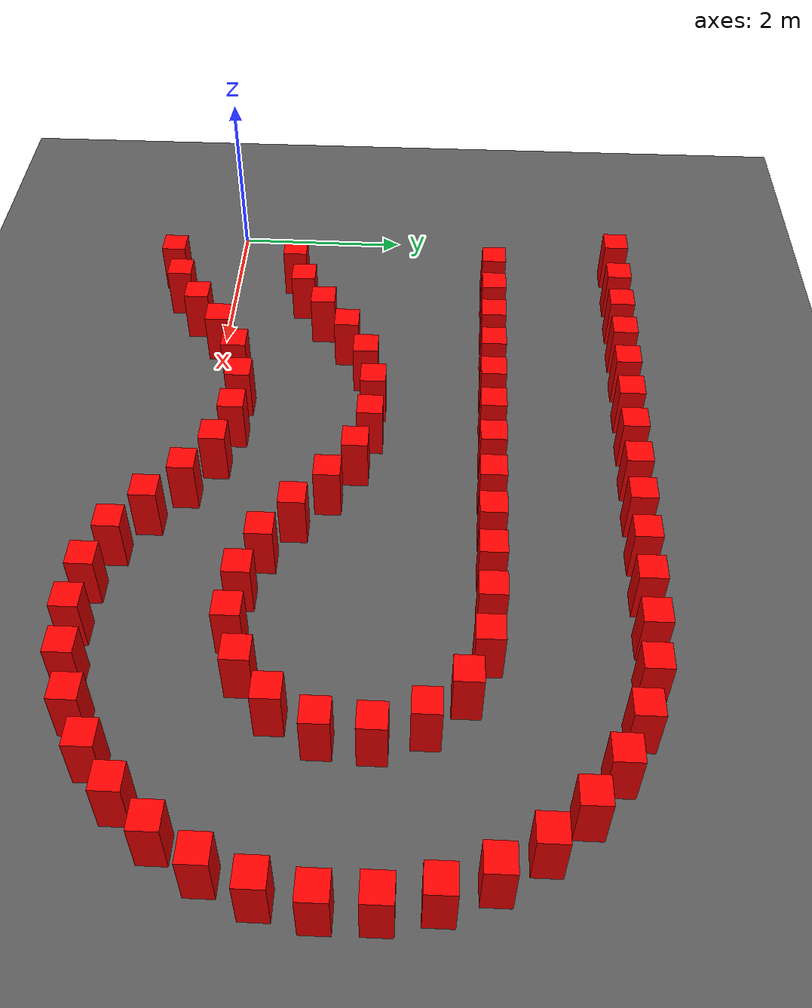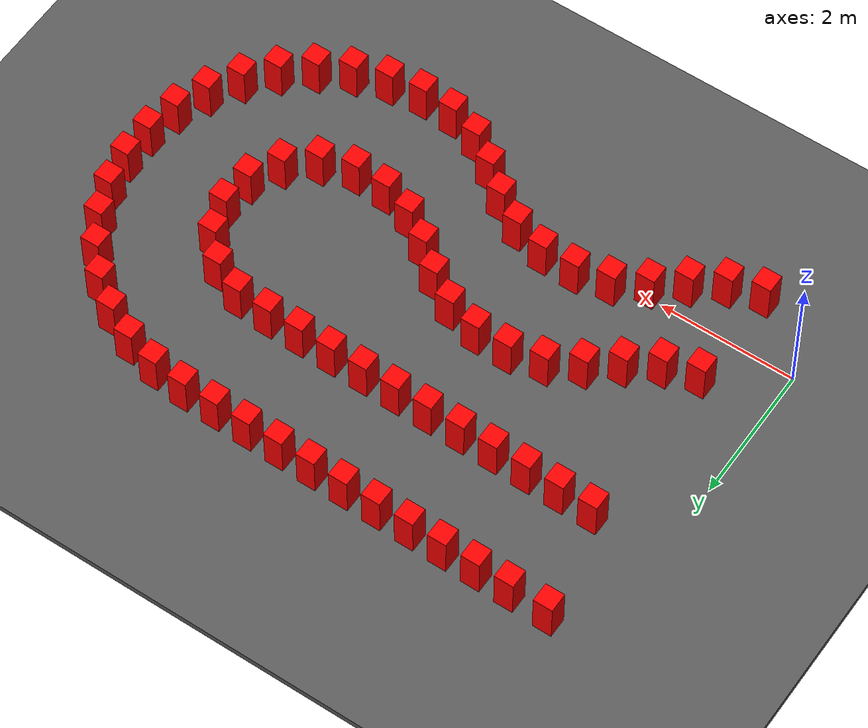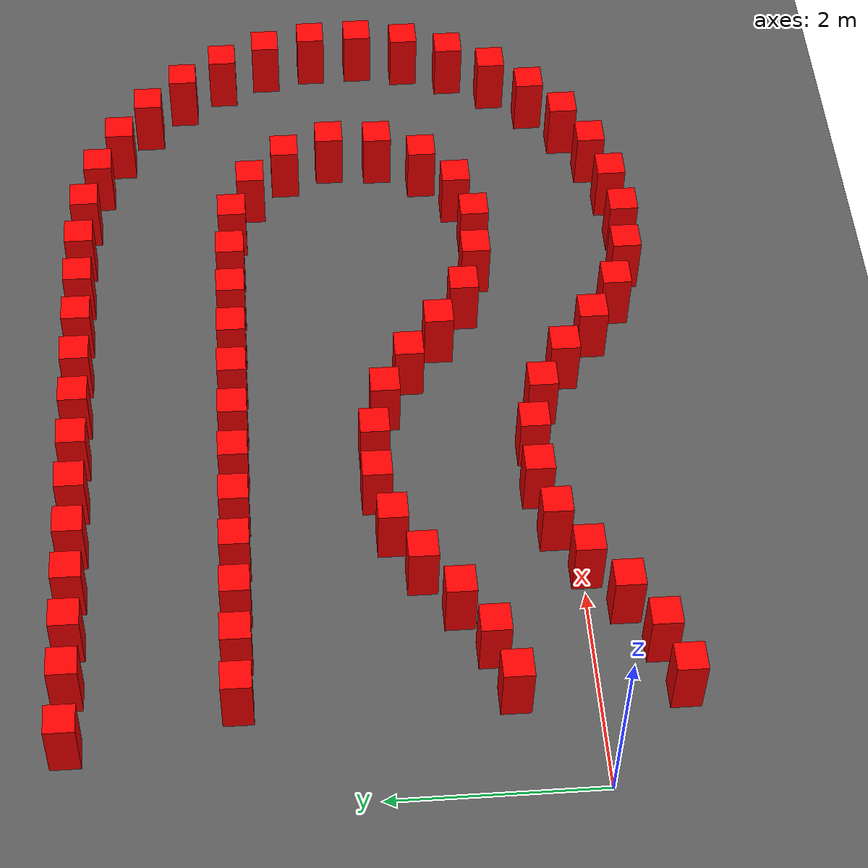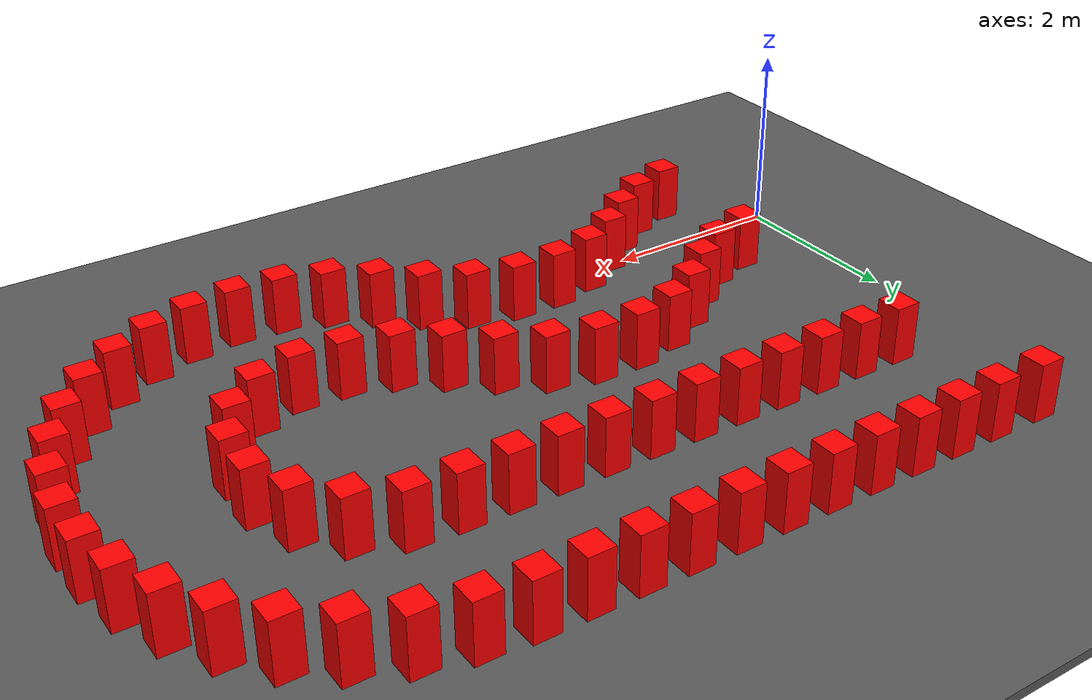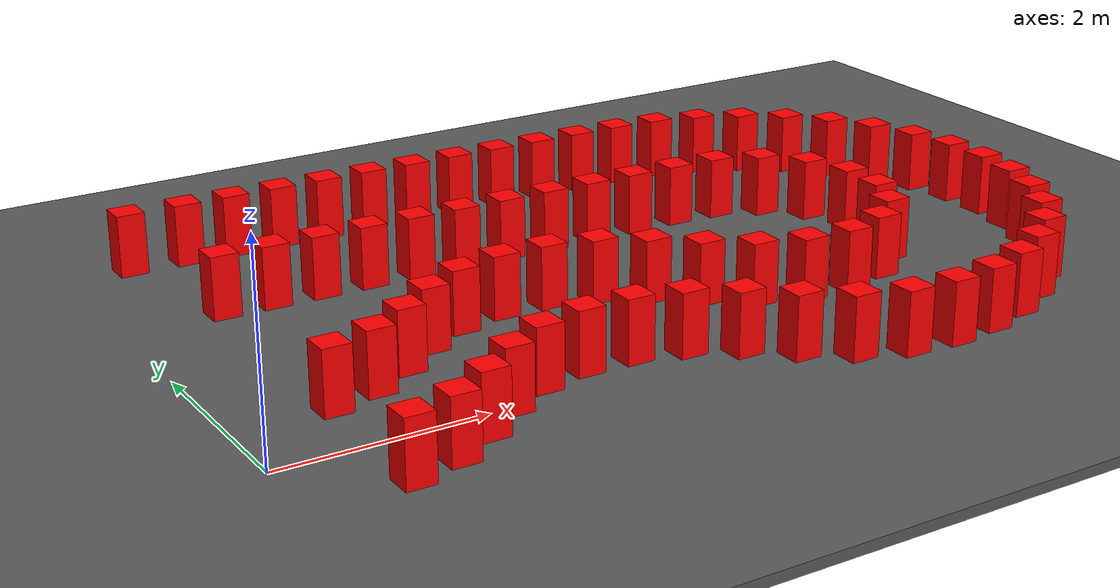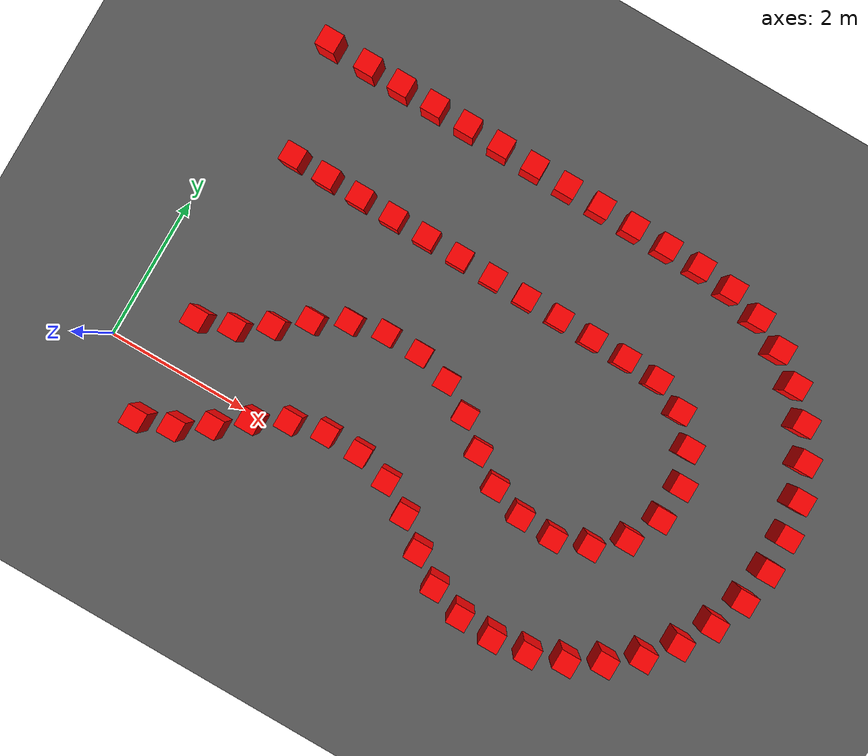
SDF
<sdf version="1.6">
 <world name="prototype">
  <model name="ground">
   <static>true</static>
   <pose>0 0 -0.05 0 0 0</pose>
   <link name="body">
    <visual name="visual">
     <geometry><box><size>200 200 0.1</size></box></geometry>
     <material><ambient>.35 .35 .35 1</ambient><diffuse>.35 .35 .35 1</diffuse></material>
    </visual>
    <collision name="collision"><geometry><box><size>200 200 0.1</size></box></geometry></collision>
   </link>
  </model>
  <model name="cone_proxy_c12">
   <static>true</static>
   <pose>0.9037 -0.7413 0.315 0 0 0</pose>
   <link name="body">
    <visual name="visual">
     <geometry><box><size>.28 .28 .63</size></box></geometry>
     <material><ambient>1 0 0 1</ambient><diffuse>1 0 0 1</diffuse></material>
    </visual>
    <collision name="collision"><geometry><box><size>.28 .28 .63</size></box></geometry></collision>
   </link>
  </model>
  <model name="cone_proxy_c13">
   <static>true</static>
   <pose>1.3822 -0.5943 0.315 0 0 0</pose>
   <link name="body">
    <visual name="visual">
     <geometry><box><size>.28 .28 .63</size></box></geometry>
     <material><ambient>1 0 0 1</ambient><diffuse>1 0 0 1</diffuse></material>
    </visual>
    <collision name="collision"><geometry><box><size>.28 .28 .63</size></box></geometry></collision>
   </link>
  </model>
  <model name="cone_proxy_c14">
   <static>true</static>
   <pose>1.8056 -0.3253 0.315 0 0 0</pose>
   <link name="body">
    <visual name="visual">
     <geometry><box><size>.28 .28 .63</size></box></geometry>
     <material><ambient>1 0 0 1</ambient><diffuse>1 0 0 1</diffuse></material>
    </visual>
    <collision name="collision"><geometry><box><size>.28 .28 .63</size></box></geometry></collision>
   </link>
  </model>
  <model name="cone_proxy_c15">
   <static>true</static>
   <pose>2.2037 -0.0190 0.315 0 0 0</pose>
   <link name="body">
    <visual name="visual">
     <geometry><box><size>.28 .28 .63</size></box></geometry>
     <material><ambient>1 0 0 1</ambient><diffuse>1 0 0 1</diffuse></material>
    </visual>
    <collision name="collision"><geometry><box><size>.28 .28 .63</size></box></geometry></collision>
   </link>
  </model>
  <model name="cone_proxy_c16">
   <static>true</static>
   <pose>2.6419 0.2243 0.315 0 0 0</pose>
   <link name="body">
    <visual name="visual">
     <geometry><box><size>.28 .28 .63</size></box></geometry>
     <material><ambient>1 0 0 1</ambient><diffuse>1 0 0 1</diffuse></material>
    </visual>
    <collision name="collision"><geometry><box><size>.28 .28 .63</size></box></geometry></collision>
   </link>
  </model>
  <model name="cone_proxy_c17">
   <static>true</static>
   <pose>3.1303 0.3345 0.315 0 0 0</pose>
   <link name="body">
    <visual name="visual">
     <geometry><box><size>.28 .28 .63</size></box></geometry>
     <material><ambient>1 0 0 1</ambient><diffuse>1 0 0 1</diffuse></material>
    </visual>
    <collision name="collision"><geometry><box><size>.28 .28 .63</size></box></geometry></collision>
   </link>
  </model>
  <model name="cone_proxy_c18">
   <static>true</static>
   <pose>3.6316 0.3242 0.315 0 0 0</pose>
   <link name="body">
    <visual name="visual">
     <geometry><box><size>.28 .28 .63</size></box></geometry>
     <material><ambient>1 0 0 1</ambient><diffuse>1 0 0 1</diffuse></material>
    </visual>
    <collision name="collision"><geometry><box><size>.28 .28 .63</size></box></geometry></collision>
   </link>
  </model>
  <model name="cone_proxy_c19">
   <static>true</static>
   <pose>4.1146 0.1928 0.315 0 0 0</pose>
   <link name="body">
    <visual name="visual">
     <geometry><box><size>.28 .28 .63</size></box></geometry>
     <material><ambient>1 0 0 1</ambient><diffuse>1 0 0 1</diffuse></material>
    </visual>
    <collision name="collision"><geometry><box><size>.28 .28 .63</size></box></geometry></collision>
   </link>
  </model>
  <model name="cone_proxy_c20">
   <static>true</static>
   <pose>4.5422 -0.0684 0.315 0 0 0</pose>
   <link name="body">
    <visual name="visual">
     <geometry><box><size>.28 .28 .63</size></box></geometry>
     <material><ambient>1 0 0 1</ambient><diffuse>1 0 0 1</diffuse></material>
    </visual>
    <collision name="collision"><geometry><box><size>.28 .28 .63</size></box></geometry></collision>
   </link>
  </model>
  <model name="cone_proxy_c21">
   <static>true</static>
   <pose>4.9290 -0.3891 0.315 0 0 0</pose>
   <link name="body">
    <visual name="visual">
     <geometry><box><size>.28 .28 .63</size></box></geometry>
     <material><ambient>1 0 0 1</ambient><diffuse>1 0 0 1</diffuse></material>
    </visual>
    <collision name="collision"><geometry><box><size>.28 .28 .63</size></box></geometry></collision>
   </link>
  </model>
  <model name="cone_proxy_c22">
   <static>true</static>
   <pose>5.3436 -0.6713 0.315 0 0 0</pose>
   <link name="body">
    <visual name="visual">
     <geometry><box><size>.28 .28 .63</size></box></geometry>
     <material><ambient>1 0 0 1</ambient><diffuse>1 0 0 1</diffuse></material>
    </visual>
    <collision name="collision"><geometry><box><size>.28 .28 .63</size></box></geometry></collision>
   </link>
  </model>
  <model name="cone_proxy_c23">
   <static>true</static>
   <pose>5.8178 -0.8321 0.315 0 0 0</pose>
   <link name="body">
    <visual name="visual">
     <geometry><box><size>.28 .28 .63</size></box></geometry>
     <material><ambient>1 0 0 1</ambient><diffuse>1 0 0 1</diffuse></material>
    </visual>
    <collision name="collision"><geometry><box><size>.28 .28 .63</size></box></geometry></collision>
   </link>
  </model>
  <model name="cone_proxy_c24">
   <static>true</static>
   <pose>6.3180 -0.8662 0.315 0 0 0</pose>
   <link name="body">
    <visual name="visual">
     <geometry><box><size>.28 .28 .63</size></box></geometry>
     <material><ambient>1 0 0 1</ambient><diffuse>1 0 0 1</diffuse></material>
    </visual>
    <collision name="collision"><geometry><box><size>.28 .28 .63</size></box></geometry></collision>
   </link>
  </model>
  <model name="cone_proxy_c25">
   <static>true</static>
   <pose>6.8156 -0.8043 0.315 0 0 0</pose>
   <link name="body">
    <visual name="visual">
     <geometry><box><size>.28 .28 .63</size></box></geometry>
     <material><ambient>1 0 0 1</ambient><diffuse>1 0 0 1</diffuse></material>
    </visual>
    <collision name="collision"><geometry><box><size>.28 .28 .63</size></box></geometry></collision>
   </link>
  </model>
  <model name="cone_proxy_c26">
   <static>true</static>
   <pose>7.2944 -0.6541 0.315 0 0 0</pose>
   <link name="body">
    <visual name="visual">
     <geometry><box><size>.28 .28 .63</size></box></geometry>
     <material><ambient>1 0 0 1</ambient><diffuse>1 0 0 1</diffuse></material>
    </visual>
    <collision name="collision"><geometry><box><size>.28 .28 .63</size></box></geometry></collision>
   </link>
  </model>
  <model name="cone_proxy_c27">
   <static>true</static>
   <pose>7.7366 -0.4170 0.315 0 0 0</pose>
   <link name="body">
    <visual name="visual">
     <geometry><box><size>.28 .28 .63</size></box></geometry>
     <material><ambient>1 0 0 1</ambient><diffuse>1 0 0 1</diffuse></material>
    </visual>
    <collision name="collision"><geometry><box><size>.28 .28 .63</size></box></geometry></collision>
   </link>
  </model>
  <model name="cone_proxy_c28">
   <static>true</static>
   <pose>8.1295 -0.1051 0.315 0 0 0</pose>
   <link name="body">
    <visual name="visual">
     <geometry><box><size>.28 .28 .63</size></box></geometry>
     <material><ambient>1 0 0 1</ambient><diffuse>1 0 0 1</diffuse></material>
    </visual>
    <collision name="collision"><geometry><box><size>.28 .28 .63</size></box></geometry></collision>
   </link>
  </model>
  <model name="cone_proxy_c29">
   <static>true</static>
   <pose>8.4586 0.2735 0.315 0 0 0</pose>
   <link name="body">
    <visual name="visual">
     <geometry><box><size>.28 .28 .63</size></box></geometry>
     <material><ambient>1 0 0 1</ambient><diffuse>1 0 0 1</diffuse></material>
    </visual>
    <collision name="collision"><geometry><box><size>.28 .28 .63</size></box></geometry></collision>
   </link>
  </model>
  <model name="cone_proxy_c30">
   <static>true</static>
   <pose>8.7129 0.7059 0.315 0 0 0</pose>
   <link name="body">
    <visual name="visual">
     <geometry><box><size>.28 .28 .63</size></box></geometry>
     <material><ambient>1 0 0 1</ambient><diffuse>1 0 0 1</diffuse></material>
    </visual>
    <collision name="collision"><geometry><box><size>.28 .28 .63</size></box></geometry></collision>
   </link>
  </model>
  <model name="cone_proxy_c31">
   <static>true</static>
   <pose>8.8861 1.1767 0.315 0 0 0</pose>
   <link name="body">
    <visual name="visual">
     <geometry><box><size>.28 .28 .63</size></box></geometry>
     <material><ambient>1 0 0 1</ambient><diffuse>1 0 0 1</diffuse></material>
    </visual>
    <collision name="collision"><geometry><box><size>.28 .28 .63</size></box></geometry></collision>
   </link>
  </model>
  <model name="cone_proxy_c32">
   <static>true</static>
   <pose>8.9684 1.6717 0.315 0 0 0</pose>
   <link name="body">
    <visual name="visual">
     <geometry><box><size>.28 .28 .63</size></box></geometry>
     <material><ambient>1 0 0 1</ambient><diffuse>1 0 0 1</diffuse></material>
    </visual>
    <collision name="collision"><geometry><box><size>.28 .28 .63</size></box></geometry></collision>
   </link>
  </model>
  <model name="cone_proxy_c33">
   <static>true</static>
   <pose>8.9604 2.1733 0.315 0 0 0</pose>
   <link name="body">
    <visual name="visual">
     <geometry><box><size>.28 .28 .63</size></box></geometry>
     <material><ambient>1 0 0 1</ambient><diffuse>1 0 0 1</diffuse></material>
    </visual>
    <collision name="collision"><geometry><box><size>.28 .28 .63</size></box></geometry></collision>
   </link>
  </model>
  <model name="cone_proxy_c34">
   <static>true</static>
   <pose>8.8622 2.6653 0.315 0 0 0</pose>
   <link name="body">
    <visual name="visual">
     <geometry><box><size>.28 .28 .63</size></box></geometry>
     <material><ambient>1 0 0 1</ambient><diffuse>1 0 0 1</diffuse></material>
    </visual>
    <collision name="collision"><geometry><box><size>.28 .28 .63</size></box></geometry></collision>
   </link>
  </model>
  <model name="cone_proxy_c35">
   <static>true</static>
   <pose>8.6743 3.1304 0.315 0 0 0</pose>
   <link name="body">
    <visual name="visual">
     <geometry><box><size>.28 .28 .63</size></box></geometry>
     <material><ambient>1 0 0 1</ambient><diffuse>1 0 0 1</diffuse></material>
    </visual>
    <collision name="collision"><geometry><box><size>.28 .28 .63</size></box></geometry></collision>
   </link>
  </model>
  <model name="cone_proxy_c36">
   <static>true</static>
   <pose>8.4065 3.5546 0.315 0 0 0</pose>
   <link name="body">
    <visual name="visual">
     <geometry><box><size>.28 .28 .63</size></box></geometry>
     <material><ambient>1 0 0 1</ambient><diffuse>1 0 0 1</diffuse></material>
    </visual>
    <collision name="collision"><geometry><box><size>.28 .28 .63</size></box></geometry></collision>
   </link>
  </model>
  <model name="cone_proxy_c37">
   <static>true</static>
   <pose>8.0652 3.9224 0.315 0 0 0</pose>
   <link name="body">
    <visual name="visual">
     <geometry><box><size>.28 .28 .63</size></box></geometry>
     <material><ambient>1 0 0 1</ambient><diffuse>1 0 0 1</diffuse></material>
    </visual>
    <collision name="collision"><geometry><box><size>.28 .28 .63</size></box></geometry></collision>
   </link>
  </model>
  <model name="cone_proxy_c38">
   <static>true</static>
   <pose>7.6627 4.2218 0.315 0 0 0</pose>
   <link name="body">
    <visual name="visual">
     <geometry><box><size>.28 .28 .63</size></box></geometry>
     <material><ambient>1 0 0 1</ambient><diffuse>1 0 0 1</diffuse></material>
    </visual>
    <collision name="collision"><geometry><box><size>.28 .28 .63</size></box></geometry></collision>
   </link>
  </model>
  <model name="cone_proxy_c39">
   <static>true</static>
   <pose>7.2133 4.4447 0.315 0 0 0</pose>
   <link name="body">
    <visual name="visual">
     <geometry><box><size>.28 .28 .63</size></box></geometry>
     <material><ambient>1 0 0 1</ambient><diffuse>1 0 0 1</diffuse></material>
    </visual>
    <collision name="collision"><geometry><box><size>.28 .28 .63</size></box></geometry></collision>
   </link>
  </model>
  <model name="cone_proxy_c40">
   <static>true</static>
   <pose>6.7300 4.5794 0.315 0 0 0</pose>
   <link name="body">
    <visual name="visual">
     <geometry><box><size>.28 .28 .63</size></box></geometry>
     <material><ambient>1 0 0 1</ambient><diffuse>1 0 0 1</diffuse></material>
    </visual>
    <collision name="collision"><geometry><box><size>.28 .28 .63</size></box></geometry></collision>
   </link>
  </model>
  <model name="cone_proxy_c41">
   <static>true</static>
   <pose>6.2305 4.6273 0.315 0 0 0</pose>
   <link name="body">
    <visual name="visual">
     <geometry><box><size>.28 .28 .63</size></box></geometry>
     <material><ambient>1 0 0 1</ambient><diffuse>1 0 0 1</diffuse></material>
    </visual>
    <collision name="collision"><geometry><box><size>.28 .28 .63</size></box></geometry></collision>
   </link>
  </model>
  <model name="cone_proxy_c42">
   <static>true</static>
   <pose>5.7281 4.6364 0.315 0 0 0</pose>
   <link name="body">
    <visual name="visual">
     <geometry><box><size>.28 .28 .63</size></box></geometry>
     <material><ambient>1 0 0 1</ambient><diffuse>1 0 0 1</diffuse></material>
    </visual>
    <collision name="collision"><geometry><box><size>.28 .28 .63</size></box></geometry></collision>
   </link>
  </model>
  <model name="cone_proxy_c43">
   <static>true</static>
   <pose>5.2257 4.6455 0.315 0 0 0</pose>
   <link name="body">
    <visual name="visual">
     <geometry><box><size>.28 .28 .63</size></box></geometry>
     <material><ambient>1 0 0 1</ambient><diffuse>1 0 0 1</diffuse></material>
    </visual>
    <collision name="collision"><geometry><box><size>.28 .28 .63</size></box></geometry></collision>
   </link>
  </model>
  <model name="cone_proxy_c44">
   <static>true</static>
   <pose>4.7234 4.6545 0.315 0 0 0</pose>
   <link name="body">
    <visual name="visual">
     <geometry><box><size>.28 .28 .63</size></box></geometry>
     <material><ambient>1 0 0 1</ambient><diffuse>1 0 0 1</diffuse></material>
    </visual>
    <collision name="collision"><geometry><box><size>.28 .28 .63</size></box></geometry></collision>
   </link>
  </model>
  <model name="cone_proxy_c45">
   <static>true</static>
   <pose>4.2209 4.6636 0.315 0 0 0</pose>
   <link name="body">
    <visual name="visual">
     <geometry><box><size>.28 .28 .63</size></box></geometry>
     <material><ambient>1 0 0 1</ambient><diffuse>1 0 0 1</diffuse></material>
    </visual>
    <collision name="collision"><geometry><box><size>.28 .28 .63</size></box></geometry></collision>
   </link>
  </model>
  <model name="cone_proxy_c46">
   <static>true</static>
   <pose>3.7185 4.6726 0.315 0 0 0</pose>
   <link name="body">
    <visual name="visual">
     <geometry><box><size>.28 .28 .63</size></box></geometry>
     <material><ambient>1 0 0 1</ambient><diffuse>1 0 0 1</diffuse></material>
    </visual>
    <collision name="collision"><geometry><box><size>.28 .28 .63</size></box></geometry></collision>
   </link>
  </model>
  <model name="cone_proxy_c47">
   <static>true</static>
   <pose>3.2161 4.6817 0.315 0 0 0</pose>
   <link name="body">
    <visual name="visual">
     <geometry><box><size>.28 .28 .63</size></box></geometry>
     <material><ambient>1 0 0 1</ambient><diffuse>1 0 0 1</diffuse></material>
    </visual>
    <collision name="collision"><geometry><box><size>.28 .28 .63</size></box></geometry></collision>
   </link>
  </model>
  <model name="cone_proxy_c48">
   <static>true</static>
   <pose>2.7137 4.6907 0.315 0 0 0</pose>
   <link name="body">
    <visual name="visual">
     <geometry><box><size>.28 .28 .63</size></box></geometry>
     <material><ambient>1 0 0 1</ambient><diffuse>1 0 0 1</diffuse></material>
    </visual>
    <collision name="collision"><geometry><box><size>.28 .28 .63</size></box></geometry></collision>
   </link>
  </model>
  <model name="cone_proxy_c49">
   <static>true</static>
   <pose>2.2114 4.6998 0.315 0 0 0</pose>
   <link name="body">
    <visual name="visual">
     <geometry><box><size>.28 .28 .63</size></box></geometry>
     <material><ambient>1 0 0 1</ambient><diffuse>1 0 0 1</diffuse></material>
    </visual>
    <collision name="collision"><geometry><box><size>.28 .28 .63</size></box></geometry></collision>
   </link>
  </model>
  <model name="cone_proxy_c50">
   <static>true</static>
   <pose>1.7089 4.7088 0.315 0 0 0</pose>
   <link name="body">
    <visual name="visual">
     <geometry><box><size>.28 .28 .63</size></box></geometry>
     <material><ambient>1 0 0 1</ambient><diffuse>1 0 0 1</diffuse></material>
    </visual>
    <collision name="collision"><geometry><box><size>.28 .28 .63</size></box></geometry></collision>
   </link>
  </model>
  <model name="cone_proxy_c51">
   <static>true</static>
   <pose>1.2065 4.7179 0.315 0 0 0</pose>
   <link name="body">
    <visual name="visual">
     <geometry><box><size>.28 .28 .63</size></box></geometry>
     <material><ambient>1 0 0 1</ambient><diffuse>1 0 0 1</diffuse></material>
    </visual>
    <collision name="collision"><geometry><box><size>.28 .28 .63</size></box></geometry></collision>
   </link>
  </model>
  <model name="cone_proxy_c52">
   <static>true</static>
   <pose>0.6272 4.7283 0.315 0 0 0</pose>
   <link name="body">
    <visual name="visual">
     <geometry><box><size>.28 .28 .63</size></box></geometry>
     <material><ambient>1 0 0 1</ambient><diffuse>1 0 0 1</diffuse></material>
    </visual>
    <collision name="collision"><geometry><box><size>.28 .28 .63</size></box></geometry></collision>
   </link>
  </model>
  <model name="cone_proxy_c85">
   <static>true</static>
   <pose>0.9309 0.7659 0.315 0 0 0</pose>
   <link name="body">
    <visual name="visual">
     <geometry><box><size>.28 .28 .63</size></box></geometry>
     <material><ambient>1 0 0 1</ambient><diffuse>1 0 0 1</diffuse></material>
    </visual>
    <collision name="collision"><geometry><box><size>.28 .28 .63</size></box></geometry></collision>
   </link>
  </model>
  <model name="cone_proxy_c86">
   <static>true</static>
   <pose>1.4093 0.9129 0.315 0 0 0</pose>
   <link name="body">
    <visual name="visual">
     <geometry><box><size>.28 .28 .63</size></box></geometry>
     <material><ambient>1 0 0 1</ambient><diffuse>1 0 0 1</diffuse></material>
    </visual>
    <collision name="collision"><geometry><box><size>.28 .28 .63</size></box></geometry></collision>
   </link>
  </model>
  <model name="cone_proxy_c87">
   <static>true</static>
   <pose>1.8327 1.1819 0.315 0 0 0</pose>
   <link name="body">
    <visual name="visual">
     <geometry><box><size>.28 .28 .63</size></box></geometry>
     <material><ambient>1 0 0 1</ambient><diffuse>1 0 0 1</diffuse></material>
    </visual>
    <collision name="collision"><geometry><box><size>.28 .28 .63</size></box></geometry></collision>
   </link>
  </model>
  <model name="cone_proxy_c88">
   <static>true</static>
   <pose>2.2309 1.4882 0.315 0 0 0</pose>
   <link name="body">
    <visual name="visual">
     <geometry><box><size>.28 .28 .63</size></box></geometry>
     <material><ambient>1 0 0 1</ambient><diffuse>1 0 0 1</diffuse></material>
    </visual>
    <collision name="collision"><geometry><box><size>.28 .28 .63</size></box></geometry></collision>
   </link>
  </model>
  <model name="cone_proxy_c89">
   <static>true</static>
   <pose>2.6691 1.7315 0.315 0 0 0</pose>
   <link name="body">
    <visual name="visual">
     <geometry><box><size>.28 .28 .63</size></box></geometry>
     <material><ambient>1 0 0 1</ambient><diffuse>1 0 0 1</diffuse></material>
    </visual>
    <collision name="collision"><geometry><box><size>.28 .28 .63</size></box></geometry></collision>
   </link>
  </model>
  <model name="cone_proxy_c90">
   <static>true</static>
   <pose>3.1574 1.8418 0.315 0 0 0</pose>
   <link name="body">
    <visual name="visual">
     <geometry><box><size>.28 .28 .63</size></box></geometry>
     <material><ambient>1 0 0 1</ambient><diffuse>1 0 0 1</diffuse></material>
    </visual>
    <collision name="collision"><geometry><box><size>.28 .28 .63</size></box></geometry></collision>
   </link>
  </model>
  <model name="cone_proxy_c91">
   <static>true</static>
   <pose>3.6587 1.8314 0.315 0 0 0</pose>
   <link name="body">
    <visual name="visual">
     <geometry><box><size>.28 .28 .63</size></box></geometry>
     <material><ambient>1 0 0 1</ambient><diffuse>1 0 0 1</diffuse></material>
    </visual>
    <collision name="collision"><geometry><box><size>.28 .28 .63</size></box></geometry></collision>
   </link>
  </model>
  <model name="cone_proxy_c92">
   <static>true</static>
   <pose>4.1417 1.7000 0.315 0 0 0</pose>
   <link name="body">
    <visual name="visual">
     <geometry><box><size>.28 .28 .63</size></box></geometry>
     <material><ambient>1 0 0 1</ambient><diffuse>1 0 0 1</diffuse></material>
    </visual>
    <collision name="collision"><geometry><box><size>.28 .28 .63</size></box></geometry></collision>
   </link>
  </model>
  <model name="cone_proxy_c93">
   <static>true</static>
   <pose>4.5694 1.4389 0.315 0 0 0</pose>
   <link name="body">
    <visual name="visual">
     <geometry><box><size>.28 .28 .63</size></box></geometry>
     <material><ambient>1 0 0 1</ambient><diffuse>1 0 0 1</diffuse></material>
    </visual>
    <collision name="collision"><geometry><box><size>.28 .28 .63</size></box></geometry></collision>
   </link>
  </model>
  <model name="cone_proxy_c94">
   <static>true</static>
   <pose>4.9562 1.1180 0.315 0 0 0</pose>
   <link name="body">
    <visual name="visual">
     <geometry><box><size>.28 .28 .63</size></box></geometry>
     <material><ambient>1 0 0 1</ambient><diffuse>1 0 0 1</diffuse></material>
    </visual>
    <collision name="collision"><geometry><box><size>.28 .28 .63</size></box></geometry></collision>
   </link>
  </model>
  <model name="cone_proxy_c95">
   <static>true</static>
   <pose>5.3708 0.8358 0.315 0 0 0</pose>
   <link name="body">
    <visual name="visual">
     <geometry><box><size>.28 .28 .63</size></box></geometry>
     <material><ambient>1 0 0 1</ambient><diffuse>1 0 0 1</diffuse></material>
    </visual>
    <collision name="collision"><geometry><box><size>.28 .28 .63</size></box></geometry></collision>
   </link>
  </model>
  <model name="cone_proxy_c96">
   <static>true</static>
   <pose>5.8449 0.6752 0.315 0 0 0</pose>
   <link name="body">
    <visual name="visual">
     <geometry><box><size>.28 .28 .63</size></box></geometry>
     <material><ambient>1 0 0 1</ambient><diffuse>1 0 0 1</diffuse></material>
    </visual>
    <collision name="collision"><geometry><box><size>.28 .28 .63</size></box></geometry></collision>
   </link>
  </model>
  <model name="cone_proxy_c97">
   <static>true</static>
   <pose>6.3449 0.6445 0.315 0 0 0</pose>
   <link name="body">
    <visual name="visual">
     <geometry><box><size>.28 .28 .63</size></box></geometry>
     <material><ambient>1 0 0 1</ambient><diffuse>1 0 0 1</diffuse></material>
    </visual>
    <collision name="collision"><geometry><box><size>.28 .28 .63</size></box></geometry></collision>
   </link>
  </model>
  <model name="cone_proxy_c98">
   <static>true</static>
   <pose>6.8221 0.7899 0.315 0 0 0</pose>
   <link name="body">
    <visual name="visual">
     <geometry><box><size>.28 .28 .63</size></box></geometry>
     <material><ambient>1 0 0 1</ambient><diffuse>1 0 0 1</diffuse></material>
    </visual>
    <collision name="collision"><geometry><box><size>.28 .28 .63</size></box></geometry></collision>
   </link>
  </model>
  <model name="cone_proxy_c99">
   <static>true</static>
   <pose>7.2036 1.1113 0.315 0 0 0</pose>
   <link name="body">
    <visual name="visual">
     <geometry><box><size>.28 .28 .63</size></box></geometry>
     <material><ambient>1 0 0 1</ambient><diffuse>1 0 0 1</diffuse></material>
    </visual>
    <collision name="collision"><geometry><box><size>.28 .28 .63</size></box></geometry></collision>
   </link>
  </model>
  <model name="cone_proxy_c100">
   <static>true</static>
   <pose>7.4278 1.5573 0.315 0 0 0</pose>
   <link name="body">
    <visual name="visual">
     <geometry><box><size>.28 .28 .63</size></box></geometry>
     <material><ambient>1 0 0 1</ambient><diffuse>1 0 0 1</diffuse></material>
    </visual>
    <collision name="collision"><geometry><box><size>.28 .28 .63</size></box></geometry></collision>
   </link>
  </model>
  <model name="cone_proxy_c101">
   <static>true</static>
   <pose>7.4572 2.0554 0.315 0 0 0</pose>
   <link name="body">
    <visual name="visual">
     <geometry><box><size>.28 .28 .63</size></box></geometry>
     <material><ambient>1 0 0 1</ambient><diffuse>1 0 0 1</diffuse></material>
    </visual>
    <collision name="collision"><geometry><box><size>.28 .28 .63</size></box></geometry></collision>
   </link>
  </model>
  <model name="cone_proxy_c102">
   <static>true</static>
   <pose>7.2880 2.5249 0.315 0 0 0</pose>
   <link name="body">
    <visual name="visual">
     <geometry><box><size>.28 .28 .63</size></box></geometry>
     <material><ambient>1 0 0 1</ambient><diffuse>1 0 0 1</diffuse></material>
    </visual>
    <collision name="collision"><geometry><box><size>.28 .28 .63</size></box></geometry></collision>
   </link>
  </model>
  <model name="cone_proxy_c103">
   <static>true</static>
   <pose>6.9477 2.8896 0.315 0 0 0</pose>
   <link name="body">
    <visual name="visual">
     <geometry><box><size>.28 .28 .63</size></box></geometry>
     <material><ambient>1 0 0 1</ambient><diffuse>1 0 0 1</diffuse></material>
    </visual>
    <collision name="collision"><geometry><box><size>.28 .28 .63</size></box></geometry></collision>
   </link>
  </model>
  <model name="cone_proxy_c104">
   <static>true</static>
   <pose>6.4913 3.0910 0.315 0 0 0</pose>
   <link name="body">
    <visual name="visual">
     <geometry><box><size>.28 .28 .63</size></box></geometry>
     <material><ambient>1 0 0 1</ambient><diffuse>1 0 0 1</diffuse></material>
    </visual>
    <collision name="collision"><geometry><box><size>.28 .28 .63</size></box></geometry></collision>
   </link>
  </model>
  <model name="cone_proxy_c105">
   <static>true</static>
   <pose>5.9909 3.1239 0.315 0 0 0</pose>
   <link name="body">
    <visual name="visual">
     <geometry><box><size>.28 .28 .63</size></box></geometry>
     <material><ambient>1 0 0 1</ambient><diffuse>1 0 0 1</diffuse></material>
    </visual>
    <collision name="collision"><geometry><box><size>.28 .28 .63</size></box></geometry></collision>
   </link>
  </model>
  <model name="cone_proxy_c106">
   <static>true</static>
   <pose>5.4885 3.1330 0.315 0 0 0</pose>
   <link name="body">
    <visual name="visual">
     <geometry><box><size>.28 .28 .63</size></box></geometry>
     <material><ambient>1 0 0 1</ambient><diffuse>1 0 0 1</diffuse></material>
    </visual>
    <collision name="collision"><geometry><box><size>.28 .28 .63</size></box></geometry></collision>
   </link>
  </model>
  <model name="cone_proxy_c107">
   <static>true</static>
   <pose>4.9861 3.1420 0.315 0 0 0</pose>
   <link name="body">
    <visual name="visual">
     <geometry><box><size>.28 .28 .63</size></box></geometry>
     <material><ambient>1 0 0 1</ambient><diffuse>1 0 0 1</diffuse></material>
    </visual>
    <collision name="collision"><geometry><box><size>.28 .28 .63</size></box></geometry></collision>
   </link>
  </model>
  <model name="cone_proxy_c108">
   <static>true</static>
   <pose>4.4837 3.1511 0.315 0 0 0</pose>
   <link name="body">
    <visual name="visual">
     <geometry><box><size>.28 .28 .63</size></box></geometry>
     <material><ambient>1 0 0 1</ambient><diffuse>1 0 0 1</diffuse></material>
    </visual>
    <collision name="collision"><geometry><box><size>.28 .28 .63</size></box></geometry></collision>
   </link>
  </model>
  <model name="cone_proxy_c109">
   <static>true</static>
   <pose>3.9813 3.1601 0.315 0 0 0</pose>
   <link name="body">
    <visual name="visual">
     <geometry><box><size>.28 .28 .63</size></box></geometry>
     <material><ambient>1 0 0 1</ambient><diffuse>1 0 0 1</diffuse></material>
    </visual>
    <collision name="collision"><geometry><box><size>.28 .28 .63</size></box></geometry></collision>
   </link>
  </model>
  <model name="cone_proxy_c110">
   <static>true</static>
   <pose>3.4789 3.1692 0.315 0 0 0</pose>
   <link name="body">
    <visual name="visual">
     <geometry><box><size>.28 .28 .63</size></box></geometry>
     <material><ambient>1 0 0 1</ambient><diffuse>1 0 0 1</diffuse></material>
    </visual>
    <collision name="collision"><geometry><box><size>.28 .28 .63</size></box></geometry></collision>
   </link>
  </model>
  <model name="cone_proxy_c111">
   <static>true</static>
   <pose>2.9765 3.1782 0.315 0 0 0</pose>
   <link name="body">
    <visual name="visual">
     <geometry><box><size>.28 .28 .63</size></box></geometry>
     <material><ambient>1 0 0 1</ambient><diffuse>1 0 0 1</diffuse></material>
    </visual>
    <collision name="collision"><geometry><box><size>.28 .28 .63</size></box></geometry></collision>
   </link>
  </model>
  <model name="cone_proxy_c112">
   <static>true</static>
   <pose>2.4742 3.1873 0.315 0 0 0</pose>
   <link name="body">
    <visual name="visual">
     <geometry><box><size>.28 .28 .63</size></box></geometry>
     <material><ambient>1 0 0 1</ambient><diffuse>1 0 0 1</diffuse></material>
    </visual>
    <collision name="collision"><geometry><box><size>.28 .28 .63</size></box></geometry></collision>
   </link>
  </model>
  <model name="cone_proxy_c113">
   <static>true</static>
   <pose>1.9717 3.1963 0.315 0 0 0</pose>
   <link name="body">
    <visual name="visual">
     <geometry><box><size>.28 .28 .63</size></box></geometry>
     <material><ambient>1 0 0 1</ambient><diffuse>1 0 0 1</diffuse></material>
    </visual>
    <collision name="collision"><geometry><box><size>.28 .28 .63</size></box></geometry></collision>
   </link>
  </model>
  <model name="cone_proxy_c114">
   <static>true</static>
   <pose>1.4693 3.2054 0.315 0 0 0</pose>
   <link name="body">
    <visual name="visual">
     <geometry><box><size>.28 .28 .63</size></box></geometry>
     <material><ambient>1 0 0 1</ambient><diffuse>1 0 0 1</diffuse></material>
    </visual>
    <collision name="collision"><geometry><box><size>.28 .28 .63</size></box></geometry></collision>
   </link>
  </model>
  <model name="cone_proxy_c115">
   <static>true</static>
   <pose>0.9669 3.2144 0.315 0 0 0</pose>
   <link name="body">
    <visual name="visual">
     <geometry><box><size>.28 .28 .63</size></box></geometry>
     <material><ambient>1 0 0 1</ambient><diffuse>1 0 0 1</diffuse></material>
    </visual>
    <collision name="collision"><geometry><box><size>.28 .28 .63</size></box></geometry></collision>
   </link>
  </model>
 </world>
</sdf>
